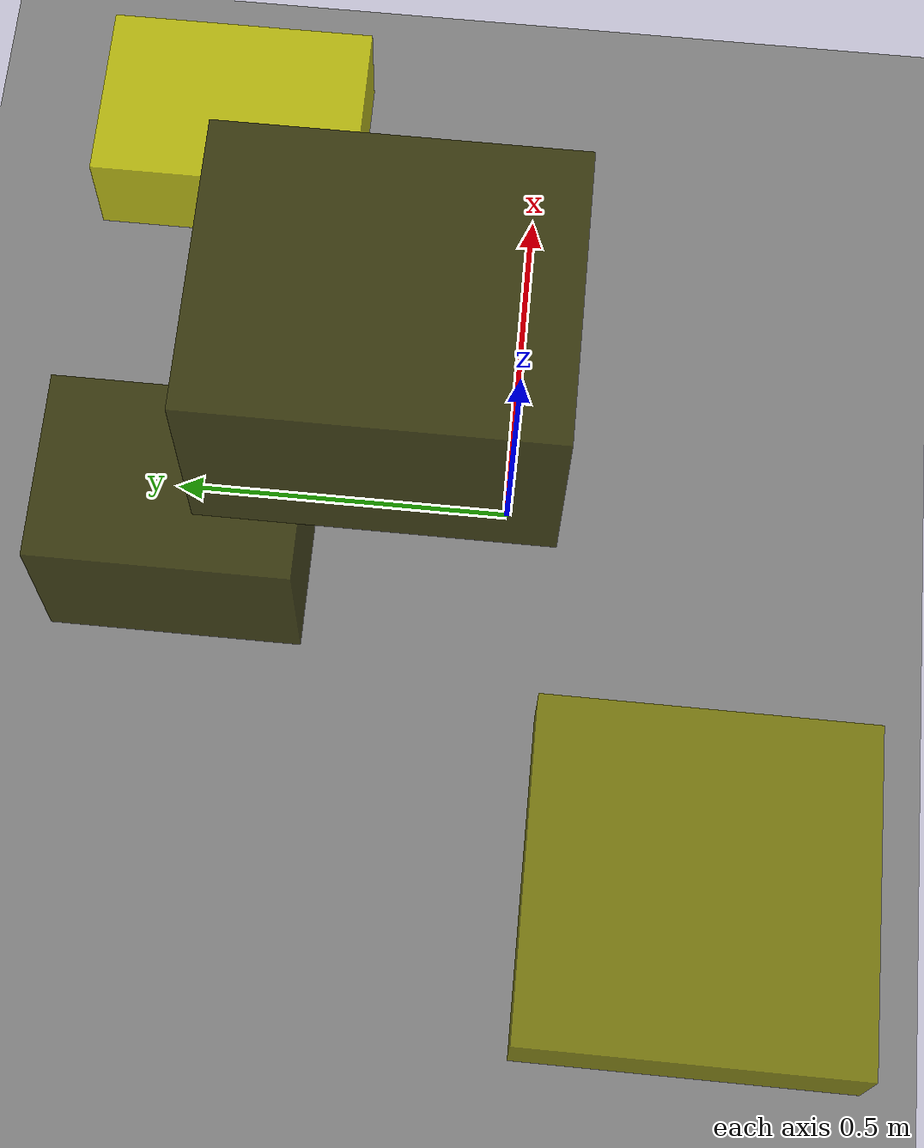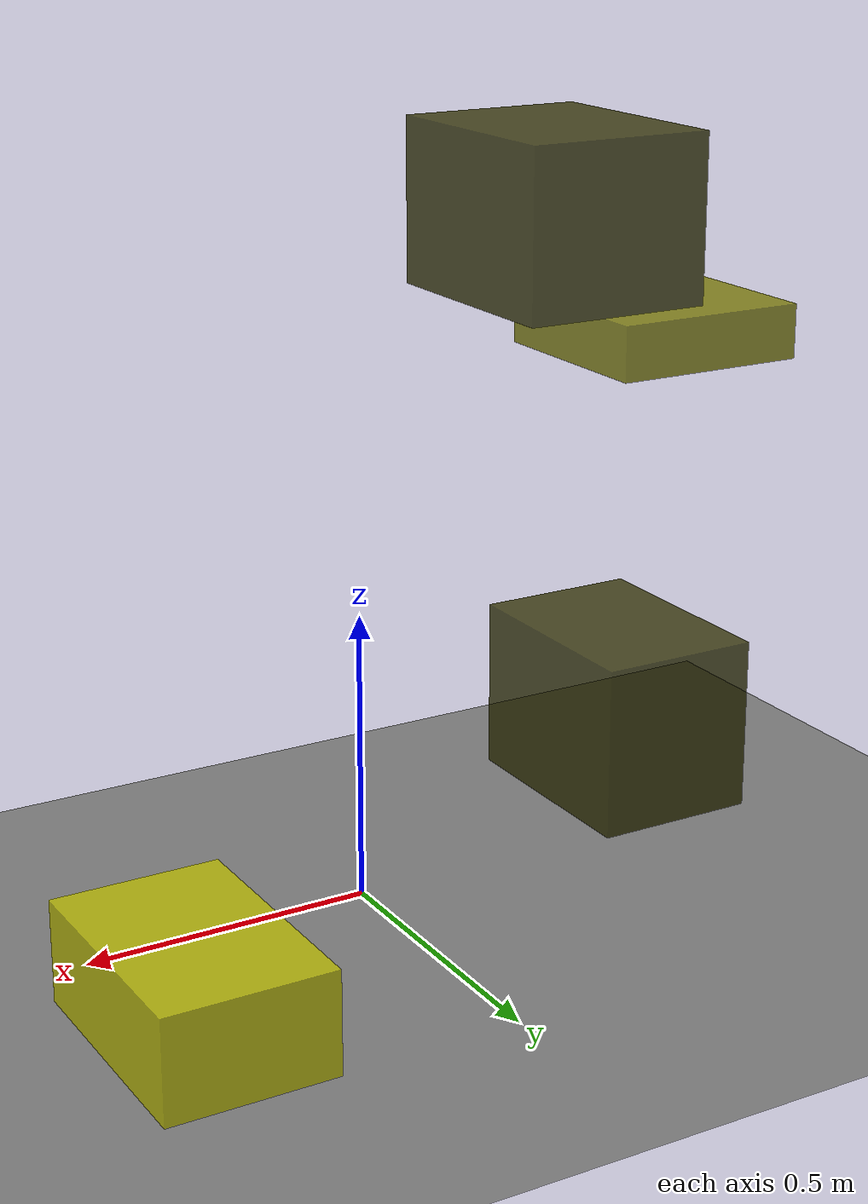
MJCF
<?xml version="1.0"?>
<mujoco model="obstacle_scene">
  <compiler angle="radian" coordinate="local"/>
  <option timestep="0.001" gravity="0 0 -9.81"/>

  <asset>
    <material name="obstacle_mat" rgba="0.8 0.8 0.0 0.8"/>
    <material name="ground_mat" rgba="0.5 0.5 0.5 1"/>
  </asset>

  <worldbody>
    <!-- Ground plane -->
    <geom name="ground" type="plane" size="3 3 0.1" material="ground_mat"/>

    <!-- Obstacles -->
    <body name="obstacle_0" pos="-0.270778 0.140314 1.162766">
      <geom name="obs_0" type="box" size="0.153900 0.186916 0.133018" rgba="0.2 0.2 0.0 0.8"/>
    </body>
    <body name="obstacle_1" pos="-0.725099 -0.223883 0.860760">
      <geom name="obs_1" type="box" size="0.181189 0.180090 0.049717" rgba="0.5 0.5 0.0 0.8"/>
    </body>
    <body name="obstacle_2" pos="0.519871 0.464472 0.188444">
      <geom name="obs_2" type="box" size="0.133238 0.196173 0.081845" rgba="0.8 0.8 0.0 0.8"/>
    </body>
    <body name="obstacle_3" pos="-0.211076 0.426625 0.454749">
      <geom name="obs_3" type="box" size="0.121787 0.166883 0.129926" rgba="0.2 0.2 0.0 0.8"/>
    </body>
  </worldbody>
</mujoco>
